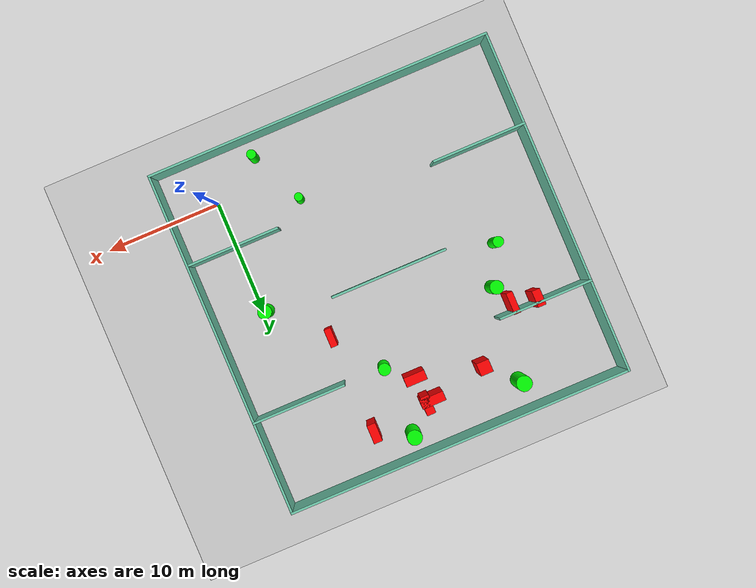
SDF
<sdf version="1.7">
 <world name="default">
  <light name="sun" type="directional">
   <pose>0 0 10 0 -0 0</pose>
   <diffuse>0.8 0.8 0.8 1</diffuse>
   <specular>0.2 0.2 0.2 1</specular>
   <attenuation>
    <range>1000</range>
    <constant>0.9</constant>
    <linear>0.01</linear>
    <quadratic>0.001</quadratic>
   </attenuation>
   <direction>-0.5 0.1 -0.9</direction>
   <spot><inner_angle>0</inner_angle><outer_angle>0</outer_angle><falloff>0</falloff></spot>
  </light>
  <model name="ground_plane">
   <static>1</static>
   <link name="link">
    <collision name="collision">
     <geometry><plane><normal>0 0 1</normal><size>100 100</size></plane></geometry>
     <surface>
      <contact><collide_bitmask>65535</collide_bitmask></contact>
      <friction><ode><mu>100</mu><mu2>50</mu2></ode></friction>
     </surface>
    </collision>
    <visual name="visual">
     <cast_shadows>0</cast_shadows>
     <geometry><plane><normal>0 0 1</normal><size>100 100</size></plane></geometry>
     <material>
      <script><uri>file://media/materials/scripts/gazebo.material</uri><name>Gazebo/Grey</name></script>
     </material>
    </visual>
   </link>
  </model>
  <gravity>0 0 -9.8</gravity>
  <magnetic_field>6e-06 2.3e-05 -4.2e-05</magnetic_field>
  <atmosphere type="adiabatic"/>
  <physics type="ode">
   <max_step_size>0.001</max_step_size>
   <real_time_factor>1</real_time_factor>
   <real_time_update_rate>1000</real_time_update_rate>
  </physics>
  <scene><ambient>0.4 0.4 0.4 1</ambient><background>0.7 0.7 0.7 1</background><shadows>1</shadows></scene>
  <spherical_coordinates>
   <surface_model>EARTH_WGS84</surface_model>
   <latitude_deg>0</latitude_deg>
   <longitude_deg>0</longitude_deg>
   <elevation>0</elevation>
   <heading_deg>0</heading_deg>
  </spherical_coordinates>
  <model name="my_base_walls">
   <link name="Wall_10">
    <collision name="Wall_10_Collision">
     <geometry><box><size>8.2 0.2 2.5</size></box></geometry>
     <pose>0 0 1.25 0 -0 0</pose>
    </collision>
    <visual name="Wall_10_Visual">
     <pose>0 0 1.25 0 -0 0</pose>
     <geometry><box><size>8.2 0.2 2.5</size></box></geometry>
     <material>
      <script><uri>file://media/materials/scripts/gazebo.material</uri><name>Gazebo/Grey</name></script>
      <ambient>0.435294 0.796078 0.67451 1</ambient>
     </material>
     <meta><layer>0</layer></meta>
    </visual>
    <pose>-11 -7 0 0 -0 0</pose>
   </link>
   <link name="Wall_12">
    <collision name="Wall_12_Collision">
     <geometry><box><size>8.2 0.2 2.5</size></box></geometry>
     <pose>0 0 1.25 0 -0 0</pose>
    </collision>
    <visual name="Wall_12_Visual">
     <pose>0 0 1.25 0 -0 0</pose>
     <geometry><box><size>8.2 0.2 2.5</size></box></geometry>
     <material>
      <script><uri>file://media/materials/scripts/gazebo.material</uri><name>Gazebo/Grey</name></script>
      <ambient>0.435294 0.796078 0.67451 1</ambient>
     </material>
     <meta><layer>0</layer></meta>
    </visual>
    <pose>-11 7 0 0 -0 0</pose>
   </link>
   <link name="Wall_14">
    <collision name="Wall_14_Collision">
     <geometry><box><size>8.2 0.2 2.5</size></box></geometry>
     <pose>0 0 1.25 0 -0 0</pose>
    </collision>
    <visual name="Wall_14_Visual">
     <pose>0 0 1.25 0 -0 0</pose>
     <geometry><box><size>8.2 0.2 2.5</size></box></geometry>
     <material>
      <script><uri>file://media/materials/scripts/gazebo.material</uri><name>Gazebo/Grey</name></script>
      <ambient>0.435294 0.796078 0.67451 1</ambient>
     </material>
     <meta><layer>0</layer></meta>
    </visual>
    <pose>11 7 0 0 -0 3.14159</pose>
   </link>
   <link name="Wall_16">
    <collision name="Wall_16_Collision">
     <geometry><box><size>10.2 0.2 2.5</size></box></geometry>
     <pose>0 0 1.25 0 -0 0</pose>
    </collision>
    <visual name="Wall_16_Visual">
     <pose>0 0 1.25 0 -0 0</pose>
     <geometry><box><size>10.2 0.2 2.5</size></box></geometry>
     <material>
      <script><uri>file://media/materials/scripts/gazebo.material</uri><name>Gazebo/Grey</name></script>
      <ambient>0.435294 0.796078 0.67451 1</ambient>
     </material>
     <meta><layer>0</layer></meta>
    </visual>
    <pose>0 0 0 0 -0 3.14159</pose>
   </link>
   <link name="Wall_2">
    <collision name="Wall_2_Collision">
     <geometry><box><size>30.2 0.2 2.5</size></box></geometry>
     <pose>0 0 1.25 0 -0 0</pose>
    </collision>
    <visual name="Wall_2_Visual">
     <pose>0 0 1.25 0 -0 0</pose>
     <geometry><box><size>30.2 0.2 2.5</size></box></geometry>
     <material>
      <script><uri>file://media/materials/scripts/gazebo.material</uri><name>Gazebo/Grey</name></script>
      <ambient>0.435294 0.796078 0.67451 1</ambient>
     </material>
     <meta><layer>0</layer></meta>
    </visual>
    <pose>0 -15 0 0 -0 3.14159</pose>
   </link>
   <link name="Wall_3">
    <collision name="Wall_3_Collision">
     <geometry><box><size>30.2 0.2 2.5</size></box></geometry>
     <pose>0 0 1.25 0 -0 0</pose>
    </collision>
    <visual name="Wall_3_Visual">
     <pose>0 0 1.25 0 -0 0</pose>
     <geometry><box><size>30.2 0.2 2.5</size></box></geometry>
     <material>
      <script><uri>file://media/materials/scripts/gazebo.material</uri><name>Gazebo/Grey</name></script>
      <ambient>0.435294 0.796078 0.67451 1</ambient>
     </material>
     <meta><layer>0</layer></meta>
    </visual>
    <pose>-15 0 0 0 -0 1.5708</pose>
   </link>
   <link name="Wall_4">
    <collision name="Wall_4_Collision">
     <geometry><box><size>30.2 0.2 2.5</size></box></geometry>
     <pose>0 0 1.25 0 -0 0</pose>
    </collision>
    <visual name="Wall_4_Visual">
     <pose>0 0 1.25 0 -0 0</pose>
     <geometry><box><size>30.2 0.2 2.5</size></box></geometry>
     <material>
      <script><uri>file://media/materials/scripts/gazebo.material</uri><name>Gazebo/Grey</name></script>
      <ambient>0.435294 0.796078 0.67451 1</ambient>
     </material>
     <meta><layer>0</layer></meta>
    </visual>
    <pose>0 15 0 0 -0 0</pose>
   </link>
   <link name="Wall_6">
    <collision name="Wall_6_Collision">
     <geometry><box><size>30.2 0.2 2.5</size></box></geometry>
     <pose>0 0 1.25 0 -0 0</pose>
    </collision>
    <visual name="Wall_6_Visual">
     <pose>0 0 1.25 0 -0 0</pose>
     <geometry><box><size>30.2 0.2 2.5</size></box></geometry>
     <material>
      <script><uri>file://media/materials/scripts/gazebo.material</uri><name>Gazebo/Grey</name></script>
      <ambient>0.435294 0.796078 0.67451 1</ambient>
     </material>
     <meta><layer>0</layer></meta>
    </visual>
    <pose>15 0 0 0 -0 1.5708</pose>
   </link>
   <link name="Wall_8">
    <collision name="Wall_8_Collision">
     <geometry><box><size>8.2 0.2 2.5</size></box></geometry>
     <pose>0 0 1.25 0 -0 0</pose>
    </collision>
    <visual name="Wall_8_Visual">
     <pose>0 0 1.25 0 -0 0</pose>
     <geometry><box><size>8.2 0.2 2.5</size></box></geometry>
     <material>
      <script><uri>file://media/materials/scripts/gazebo.material</uri><name>Gazebo/Grey</name></script>
      <ambient>0.435294 0.796078 0.67451 1</ambient>
     </material>
     <meta><layer>0</layer></meta>
    </visual>
    <pose>11 -7 0 0 -0 3.14159</pose>
   </link>
   <static>1</static>
   <pose>-11 11 0 0 -0 0</pose>
  </model>
  <model name="cylinder1">
   <static>1</static>
   <link name="link">
    <inertial>
     <mass>1</mass>
     <inertia><ixx>0.5</ixx><ixy>0</ixy><ixz>0</ixz><iyy>0.5</iyy><iyz>0</iyz><izz>1</izz></inertia>
    </inertial>
    <collision name="collision">
     <geometry><cylinder><radius>0.39518260645815184</radius><length>2.5</length></cylinder></geometry>
    </collision>
    <visual name="visual">
     <geometry><cylinder><radius>0.39518260645815184</radius><length>2.5</length></cylinder></geometry>
     <material>
      <ambient>0 1 0 1</ambient>
      <diffuse>0 1 0 1</diffuse>
      <specular>0.1 0.1 0.1 1</specular>
      <emissive>0 0 0 0</emissive>
     </material>
    </visual>
   </link>
   <pose>-4.440145124102697 -2.394783013699887 1.25 0 0 0</pose>
  </model>
  <model name="cylinder2">
   <static>1</static>
   <link name="link">
    <inertial>
     <mass>1</mass>
     <inertia><ixx>0.5</ixx><ixy>0</ixy><ixz>0</ixz><iyy>0.5</iyy><iyz>0</iyz><izz>1</izz></inertia>
    </inertial>
    <collision name="collision">
     <geometry><cylinder><radius>0.45676916455237093</radius><length>2.5</length></cylinder></geometry>
    </collision>
    <visual name="visual">
     <geometry><cylinder><radius>0.45676916455237093</radius><length>2.5</length></cylinder></geometry>
     <material>
      <ambient>0 1 0 1</ambient>
      <diffuse>0 1 0 1</diffuse>
      <specular>0.1 0.1 0.1 1</specular>
      <emissive>0 0 0 0</emissive>
     </material>
    </visual>
   </link>
   <pose>-20.253140937763817 12.117006298957772 1.25 0 0 0</pose>
  </model>
  <model name="cylinder3">
   <static>1</static>
   <link name="link">
    <inertial>
     <mass>1</mass>
     <inertia><ixx>0.5</ixx><ixy>0</ixy><ixz>0</ixz><iyy>0.5</iyy><iyz>0</iyz><izz>1</izz></inertia>
    </inertial>
    <collision name="collision">
     <geometry><cylinder><radius>0.5832203174643389</radius><length>2.5</length></cylinder></geometry>
    </collision>
    <visual name="visual">
     <geometry><cylinder><radius>0.5832203174643389</radius><length>2.5</length></cylinder></geometry>
     <material>
      <ambient>0 1 0 1</ambient>
      <diffuse>0 1 0 1</diffuse>
      <specular>0.1 0.1 0.1 1</specular>
      <emissive>0 0 0 0</emissive>
     </material>
    </visual>
   </link>
   <pose>-18.680047750352536 15.505096392341436 1.25 0 0 0</pose>
  </model>
  <model name="cylinder4">
   <static>1</static>
   <link name="link">
    <inertial>
     <mass>1</mass>
     <inertia><ixx>0.5</ixx><ixy>0</ixy><ixz>0</ixz><iyy>0.5</iyy><iyz>0</iyz><izz>1</izz></inertia>
    </inertial>
    <collision name="collision">
     <geometry><cylinder><radius>0.6656268759274226</radius><length>2.5</length></cylinder></geometry>
    </collision>
    <visual name="visual">
     <geometry><cylinder><radius>0.6656268759274226</radius><length>2.5</length></cylinder></geometry>
     <material>
      <ambient>0 1 0 1</ambient>
      <diffuse>0 1 0 1</diffuse>
      <specular>0.1 0.1 0.1 1</specular>
      <emissive>0 0 0 0</emissive>
     </material>
    </visual>
   </link>
   <pose>-17.680396160314864 23.645524738813734 1.25 0 0 0</pose>
  </model>
  <model name="cylinder5">
   <static>1</static>
   <link name="link">
    <inertial>
     <mass>1</mass>
     <inertia><ixx>0.5</ixx><ixy>0</ixy><ixz>0</ixz><iyy>0.5</iyy><iyz>0</iyz><izz>1</izz></inertia>
    </inertial>
    <collision name="collision">
     <geometry><cylinder><radius>0.3563566126828539</radius><length>2.5</length></cylinder></geometry>
    </collision>
    <visual name="visual">
     <geometry><cylinder><radius>0.3563566126828539</radius><length>2.5</length></cylinder></geometry>
     <material>
      <ambient>0 1 0 1</ambient>
      <diffuse>0 1 0 1</diffuse>
      <specular>0.1 0.1 0.1 1</specular>
      <emissive>0 0 0 0</emissive>
     </material>
    </visual>
   </link>
   <pose>-6.6473846586645795 2.334930140667926 1.25 0 0 0</pose>
  </model>
  <model name="cylinder6">
   <static>1</static>
   <link name="link">
    <inertial>
     <mass>1</mass>
     <inertia><ixx>0.5</ixx><ixy>0</ixy><ixz>0</ixz><iyy>0.5</iyy><iyz>0</iyz><izz>1</izz></inertia>
    </inertial>
    <collision name="collision">
     <geometry><cylinder><radius>0.5195574830008924</radius><length>2.5</length></cylinder></geometry>
    </collision>
    <visual name="visual">
     <geometry><cylinder><radius>0.5195574830008924</radius><length>2.5</length></cylinder></geometry>
     <material>
      <ambient>0 1 0 1</ambient>
      <diffuse>0 1 0 1</diffuse>
      <specular>0.1 0.1 0.1 1</specular>
      <emissive>0 0 0 0</emissive>
     </material>
    </visual>
   </link>
   <pose>-7.599471702683783 18.1080419497583 1.25 0 0 0</pose>
  </model>
  <model name="cylinder7">
   <static>1</static>
   <link name="link">
    <inertial>
     <mass>1</mass>
     <inertia><ixx>0.5</ixx><ixy>0</ixy><ixz>0</ixz><iyy>0.5</iyy><iyz>0</iyz><izz>1</izz></inertia>
    </inertial>
    <collision name="collision">
     <geometry><cylinder><radius>0.5928354058197194</radius><length>2.5</length></cylinder></geometry>
    </collision>
    <visual name="visual">
     <geometry><cylinder><radius>0.5928354058197194</radius><length>2.5</length></cylinder></geometry>
     <material>
      <ambient>0 1 0 1</ambient>
      <diffuse>0 1 0 1</diffuse>
      <specular>0.1 0.1 0.1 1</specular>
      <emissive>0 0 0 0</emissive>
     </material>
    </visual>
   </link>
   <pose>-0.3901991098453905 9.937274633037784 1.25 0 0 0</pose>
  </model>
  <model name="cylinder8">
   <static>1</static>
   <link name="link">
    <inertial>
     <mass>1</mass>
     <inertia><ixx>0.5</ixx><ixy>0</ixy><ixz>0</ixz><iyy>0.5</iyy><iyz>0</iyz><izz>1</izz></inertia>
    </inertial>
    <collision name="collision">
     <geometry><cylinder><radius>0.6399437352489313</radius><length>2.5</length></cylinder></geometry>
    </collision>
    <visual name="visual">
     <geometry><cylinder><radius>0.6399437352489313</radius><length>2.5</length></cylinder></geometry>
     <material>
      <ambient>0 1 0 1</ambient>
      <diffuse>0 1 0 1</diffuse>
      <specular>0.1 0.1 0.1 1</specular>
      <emissive>0 0 0 0</emissive>
     </material>
    </visual>
   </link>
   <pose>-7.694702639268385 24.21523011047541 1.25 0 0 0</pose>
  </model>
  <model name="box1">
   <static>1</static>
   <link name="link">
    <inertial>
     <mass>1</mass>
     <inertia><ixx>0.083</ixx><ixy>0</ixy><ixz>0</ixz><iyy>0.083</iyy><iyz>0</iyz><izz>0.083</izz></inertia>
    </inertial>
    <collision name="collision">
     <geometry><box><size>1.827787406223107 0.8095888450118869 2.5</size></box></geometry>
    </collision>
    <visual name="visual">
     <geometry><box><size>1.827787406223107 0.8095888450118869 2.5</size></box></geometry>
     <material>
      <ambient>1 0 0 1</ambient>
      <diffuse>1 0 0 1</diffuse>
      <specular>0.1 0.1 0.1 1</specular>
      <emissive>0 0 0 0</emissive>
     </material>
    </visual>
    <sensor name="my_contact" type="contact">
     <contact><collision>box_collision</collision><topic>__default_topic__</topic></contact>
    </sensor>
   </link>
   <pose>-9.630916389731368 19.786920172410383 1.25 0 0 0</pose>
  </model>
  <model name="box2">
   <static>1</static>
   <link name="link">
    <inertial>
     <mass>1</mass>
     <inertia><ixx>0.083</ixx><ixy>0</ixy><ixz>0</ixz><iyy>0.083</iyy><iyz>0</iyz><izz>0.083</izz></inertia>
    </inertial>
    <collision name="collision">
     <geometry><box><size>0.7453168623892068 1.603195530746922 2.5</size></box></geometry>
    </collision>
    <visual name="visual">
     <geometry><box><size>0.7453168623892068 1.603195530746922 2.5</size></box></geometry>
     <material>
      <ambient>1 0 0 1</ambient>
      <diffuse>1 0 0 1</diffuse>
      <specular>0.1 0.1 0.1 1</specular>
      <emissive>0 0 0 0</emissive>
     </material>
    </visual>
    <sensor name="my_contact" type="contact">
     <contact><collision>box_collision</collision><topic>__default_topic__</topic></contact>
    </sensor>
   </link>
   <pose>-4.797889020581042 22.607482112429693 1.25 0 0 0</pose>
  </model>
  <model name="box3">
   <static>1</static>
   <link name="link">
    <inertial>
     <mass>1</mass>
     <inertia><ixx>0.083</ixx><ixy>0</ixy><ixz>0</ixz><iyy>0.083</iyy><iyz>0</iyz><izz>0.083</izz></inertia>
    </inertial>
    <collision name="collision">
     <geometry><box><size>0.5905719046703475 1.58158186574214 2.5</size></box></geometry>
    </collision>
    <visual name="visual">
     <geometry><box><size>0.5905719046703475 1.58158186574214 2.5</size></box></geometry>
     <material>
      <ambient>1 0 0 1</ambient>
      <diffuse>1 0 0 1</diffuse>
      <specular>0.1 0.1 0.1 1</specular>
      <emissive>0 0 0 0</emissive>
     </material>
    </visual>
    <sensor name="my_contact" type="contact">
     <contact><collision>box_collision</collision><topic>__default_topic__</topic></contact>
    </sensor>
   </link>
   <pose>-4.554350156602734 13.991196318302833 1.25 0 0 0</pose>
  </model>
  <model name="box4">
   <static>1</static>
   <link name="link">
    <inertial>
     <mass>1</mass>
     <inertia><ixx>0.083</ixx><ixy>0</ixy><ixz>0</ixz><iyy>0.083</iyy><iyz>0</iyz><izz>0.083</izz></inertia>
    </inertial>
    <collision name="collision">
     <geometry><box><size>2.0654683929803324 0.7880405917293739 2.5</size></box></geometry>
    </collision>
    <visual name="visual">
     <geometry><box><size>2.0654683929803324 0.7880405917293739 2.5</size></box></geometry>
     <material>
      <ambient>1 0 0 1</ambient>
      <diffuse>1 0 0 1</diffuse>
      <specular>0.1 0.1 0.1 1</specular>
      <emissive>0 0 0 0</emissive>
     </material>
    </visual>
    <sensor name="my_contact" type="contact">
     <contact><collision>box_collision</collision><topic>__default_topic__</topic></contact>
    </sensor>
   </link>
   <pose>-10.249652965613684 21.973990378609706 1.25 0 0 0</pose>
  </model>
  <model name="box5">
   <static>1</static>
   <link name="link">
    <inertial>
     <mass>1</mass>
     <inertia><ixx>0.083</ixx><ixy>0</ixy><ixz>0</ixz><iyy>0.083</iyy><iyz>0</iyz><izz>0.083</izz></inertia>
    </inertial>
    <collision name="collision">
     <geometry><box><size>0.7180848363438468 1.4236671207527112 2.5</size></box></geometry>
    </collision>
    <visual name="visual">
     <geometry><box><size>0.7180848363438468 1.4236671207527112 2.5</size></box></geometry>
     <material>
      <ambient>1 0 0 1</ambient>
      <diffuse>1 0 0 1</diffuse>
      <specular>0.1 0.1 0.1 1</specular>
      <emissive>0 0 0 0</emissive>
     </material>
    </visual>
    <sensor name="my_contact" type="contact">
     <contact><collision>box_collision</collision><topic>__default_topic__</topic></contact>
    </sensor>
   </link>
   <pose>-21.52184916633554 17.648757638282778 1.25 0 0 0</pose>
  </model>
  <model name="box6">
   <static>1</static>
   <link name="link">
    <inertial>
     <mass>1</mass>
     <inertia><ixx>0.083</ixx><ixy>0</ixy><ixz>0</ixz><iyy>0.083</iyy><iyz>0</iyz><izz>0.083</izz></inertia>
    </inertial>
    <collision name="collision">
     <geometry><box><size>1.0884796197779885 1.093945150469826 2.5</size></box></geometry>
    </collision>
    <visual name="visual">
     <geometry><box><size>1.0884796197779885 1.093945150469826 2.5</size></box></geometry>
     <material>
      <ambient>1 0 0 1</ambient>
      <diffuse>1 0 0 1</diffuse>
      <specular>0.1 0.1 0.1 1</specular>
      <emissive>0 0 0 0</emissive>
     </material>
    </visual>
    <sensor name="my_contact" type="contact">
     <contact><collision>box_collision</collision><topic>__default_topic__</topic></contact>
    </sensor>
   </link>
   <pose>-15.20640535706935 21.17931516573455 1.25 0 0 0</pose>
  </model>
  <model name="box7">
   <static>1</static>
   <link name="link">
    <inertial>
     <mass>1</mass>
     <inertia><ixx>0.083</ixx><ixy>0</ixy><ixz>0</ixz><iyy>0.083</iyy><iyz>0</iyz><izz>0.083</izz></inertia>
    </inertial>
    <collision name="collision">
     <geometry><box><size>0.7706298256572108 1.6010839332621263 2.5</size></box></geometry>
    </collision>
    <visual name="visual">
     <geometry><box><size>0.7706298256572108 1.6010839332621263 2.5</size></box></geometry>
     <material>
      <ambient>1 0 0 1</ambient>
      <diffuse>1 0 0 1</diffuse>
      <specular>0.1 0.1 0.1 1</specular>
      <emissive>0 0 0 0</emissive>
     </material>
    </visual>
    <sensor name="my_contact" type="contact">
     <contact><collision>box_collision</collision><topic>__default_topic__</topic></contact>
    </sensor>
   </link>
   <pose>-9.717347557181782 22.19839638379667 1.25 0 0 0</pose>
  </model>
  <model name="box8">
   <static>1</static>
   <link name="link">
    <inertial>
     <mass>1</mass>
     <inertia><ixx>0.083</ixx><ixy>0</ixy><ixz>0</ixz><iyy>0.083</iyy><iyz>0</iyz><izz>0.083</izz></inertia>
    </inertial>
    <collision name="collision">
     <geometry><box><size>0.5595344603891999 1.8664955149975757 2.5</size></box></geometry>
    </collision>
    <visual name="visual">
     <geometry><box><size>0.5595344603891999 1.8664955149975757 2.5</size></box></geometry>
     <material>
      <ambient>1 0 0 1</ambient>
      <diffuse>1 0 0 1</diffuse>
      <specular>0.1 0.1 0.1 1</specular>
      <emissive>0 0 0 0</emissive>
     </material>
    </visual>
    <sensor name="my_contact" type="contact">
     <contact><collision>box_collision</collision><topic>__default_topic__</topic></contact>
    </sensor>
   </link>
   <pose>-19.4353253014964 17.217411574625807 1.25 0 0 0</pose>
  </model>
 </world>
</sdf>
